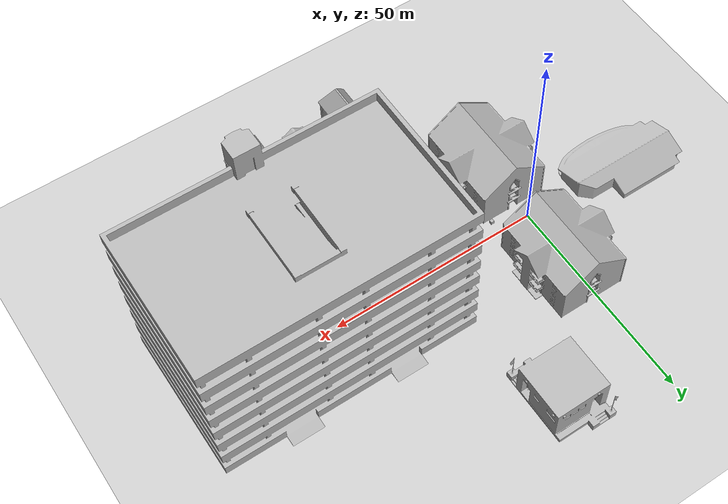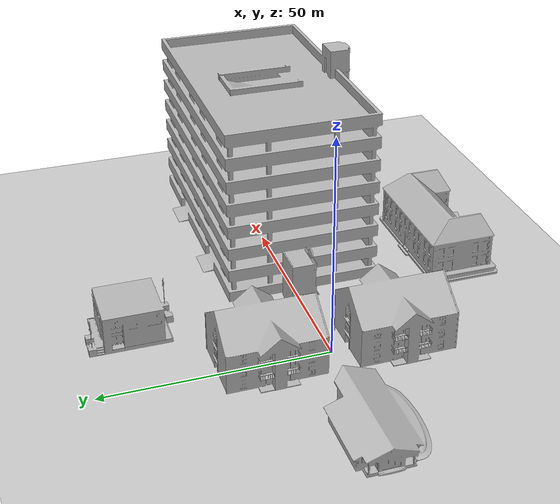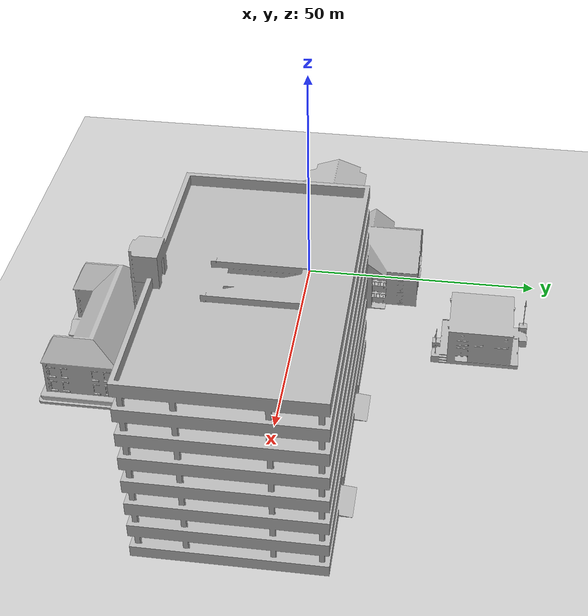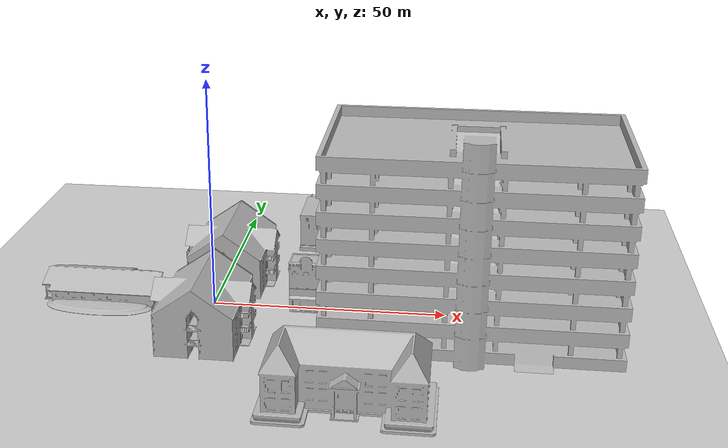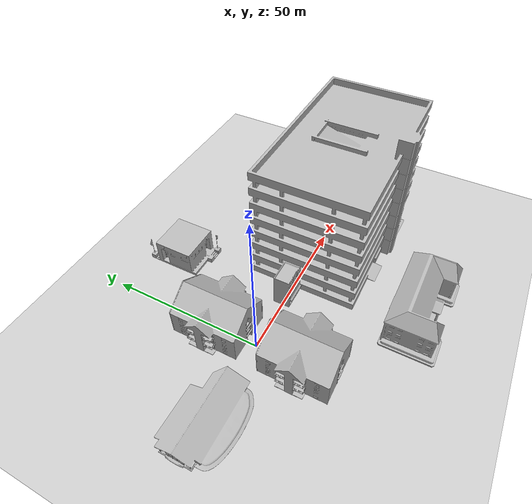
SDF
<sdf version="1.6">
 <world name="default">
  <physics name="default_physics" default="0" type="ode">
   <ode>
    <solver>
     <type>quick</type>
     <iters>20</iters>
     <sor>1</sor>
     <use_dynamic_moi_rescaling>0</use_dynamic_moi_rescaling>
    </solver>
    <constraints>
     <cfm>0</cfm>
     <erp>0.2</erp>
     <contact_max_correcting_vel>100</contact_max_correcting_vel>
     <contact_surface_layer>0</contact_surface_layer>
    </constraints>
   </ode>
   <max_step_size>0.001</max_step_size>
   <real_time_factor>1</real_time_factor>
   <real_time_update_rate>1000</real_time_update_rate>
  </physics>
  <light name="sun" type="directional">
   <pose>0 0 10 0 -0 0</pose>
   <diffuse>0.8 0.8 0.8 1</diffuse>
   <specular>0.1 0.1 0.1 1</specular>
   <attenuation>
    <range>1000</range>
    <constant>0.9</constant>
    <linear>0.01</linear>
    <quadratic>0.001</quadratic>
   </attenuation>
   <direction>-0.5 0.5 -1</direction>
  </light>
  <model name="ground_plane">
   <static>1</static>
   <link name="link">
    <collision name="collision">
     <geometry><plane><normal>0 0 1</normal><size>100 100</size></plane></geometry>
     <surface><friction><ode><mu>100</mu><mu2>50</mu2></ode></friction></surface>
    </collision>
    <visual name="visual">
     <cast_shadows>0</cast_shadows>
     <geometry><plane><normal>0 0 1</normal><size>100 100</size></plane></geometry>
     <material>
      <script><uri>file://media/materials/scripts/gazebo.material</uri><name>Gazebo/Grey</name></script>
     </material>
    </visual>
   </link>
  </model>
  <gravity>0 0 -9.8</gravity>
  <magnetic_field>6e-06 2.3e-05 -4.2e-05</magnetic_field>
  <atmosphere type="adiabatic"/>
  <scene><ambient>0.4 0.4 0.4 1</ambient><background>0.7 0.7 0.7 1</background><shadows>1</shadows></scene>
  <spherical_coordinates>
   <surface_model>EARTH_WGS84</surface_model>
   <latitude_deg>0</latitude_deg>
   <longitude_deg>0</longitude_deg>
   <elevation>0</elevation>
   <heading_deg>0</heading_deg>
  </spherical_coordinates>
  <model name="apartment">
   <static>1</static>
   <link name="link">
    <collision name="collision">
     <geometry><mesh><uri>model://apartment/meshes/apartment.dae</uri><scale>1 1 1</scale></mesh></geometry>
    </collision>
    <visual name="visual">
     <geometry><mesh><uri>model://apartment/meshes/apartment.dae</uri><scale>1 1 1</scale></mesh></geometry>
    </visual>
   </link>
   <pose>1.4943 13.9202 0 0 -0 0</pose>
  </model>
  <model name="apartment_0">
   <static>1</static>
   <link name="link">
    <collision name="collision">
     <geometry><mesh><uri>model://apartment/meshes/apartment.dae</uri><scale>1 1 1</scale></mesh></geometry>
    </collision>
    <visual name="visual">
     <geometry><mesh><uri>model://apartment/meshes/apartment.dae</uri><scale>1 1 1</scale></mesh></geometry>
    </visual>
   </link>
   <pose>1.23439 -14.6687 0 0 -0 0</pose>
  </model>
  <model name="number1">
   <pose>7.61262 -3.05113 0.4 0 -0 0</pose>
   <static>1</static>
   <link name="link">
    <visual name="visual">
     <geometry><mesh><uri>model://number1/meshes/number.dae</uri><scale>1 1 1</scale></mesh></geometry>
     <material>
      <script>
       <uri>model://number1/materials/scripts</uri>
       <uri>model://number1/materials/textures</uri>
       <name>Number/One</name>
      </script>
     </material>
    </visual>
   </link>
  </model>
  <model name="osrf_first_office">
   <static>1</static>
   <link name="link">
    <collision name="collision">
     <geometry>
      <mesh><uri>model://osrf_first_office/meshes/osrf_first_office.dae</uri><scale>1 1 1</scale></mesh>
     </geometry>
    </collision>
    <visual name="visual">
     <geometry>
      <mesh><uri>model://osrf_first_office/meshes/osrf_first_office.dae</uri><scale>1 1 1</scale></mesh>
     </geometry>
    </visual>
   </link>
   <pose>-23.9148 2.11032 0 0 -0 0</pose>
  </model>
  <model name="parking_garage">
   <static>1</static>
   <link name="link">
    <collision name="collision">
     <geometry>
      <mesh><uri>model://parking_garage/meshes/parking_garage.dae</uri><scale>1 1 1</scale></mesh>
     </geometry>
    </collision>
    <visual name="visual">
     <geometry>
      <mesh><uri>model://parking_garage/meshes/parking_garage.dae</uri><scale>1 1 1</scale></mesh>
     </geometry>
    </visual>
   </link>
   <pose>55.2464 -2.41888 0 0 -0 0</pose>
  </model>
  <model name="police_station">
   <static>1</static>
   <link name="link">
    <collision name="collision_main">
     <pose>0 0 4.28998 0 -0 0</pose>
     <geometry><box><size>13.037 13.037 8.57995</size></box></geometry>
    </collision>
    <collision name="collision_landing">
     <pose>0 0 0.464086 0 -0 0</pose>
     <geometry><box><size>13.037 16.2446 0.928173</size></box></geometry>
    </collision>
    <visual name="visual">
     <geometry>
      <mesh><uri>model://police_station/meshes/police_station.dae</uri><scale>1 1 1</scale></mesh>
     </geometry>
    </visual>
   </link>
   <pose>20.6756 38.921 0 0 -0 0</pose>
  </model>
  <model name="salon">
   <static>1</static>
   <link name="link">
    <collision name="collision">
     <pose>0 0 5.69469 0 -0 0</pose>
     <geometry><box><size>7.21297 5.37875 11.3894</size></box></geometry>
    </collision>
    <visual name="visual">
     <pose>0 -0.903605 0 0 -0 0</pose>
     <geometry><mesh><uri>model://salon/meshes/salon.dae</uri><scale>1 1 1</scale></mesh></geometry>
    </visual>
   </link>
   <pose>20.441 0.388434 0 0 -0 0</pose>
  </model>
  <model name="school">
   <static>1</static>
   <link name="link">
    <collision name="collision">
     <geometry><mesh><uri>model://school/meshes/school.dae</uri><scale>1 1 1</scale></mesh></geometry>
    </collision>
    <visual name="visual">
     <geometry><mesh><uri>model://school/meshes/school.dae</uri><scale>1 1 1</scale></mesh></geometry>
    </visual>
   </link>
   <pose>33.3004 -36.7613 0 0 -0 0</pose>
  </model>
 </world>
</sdf>
